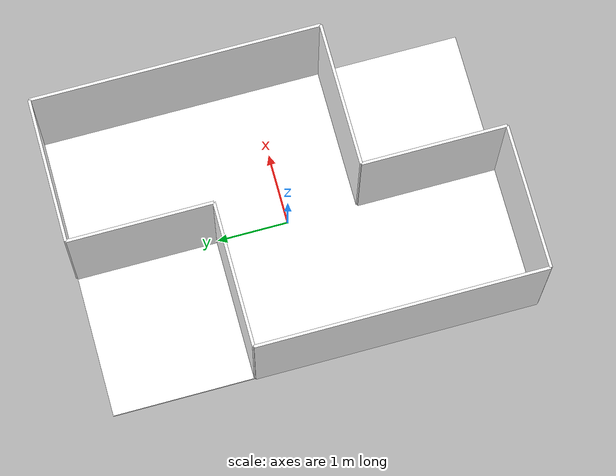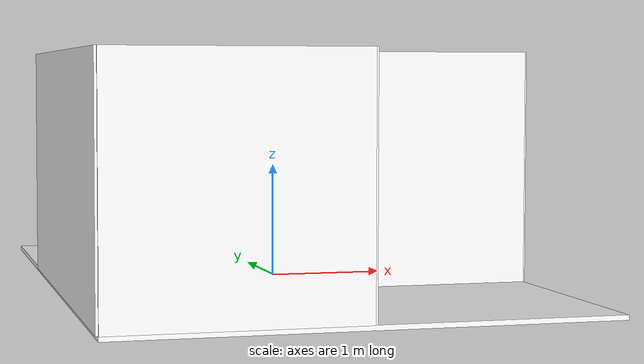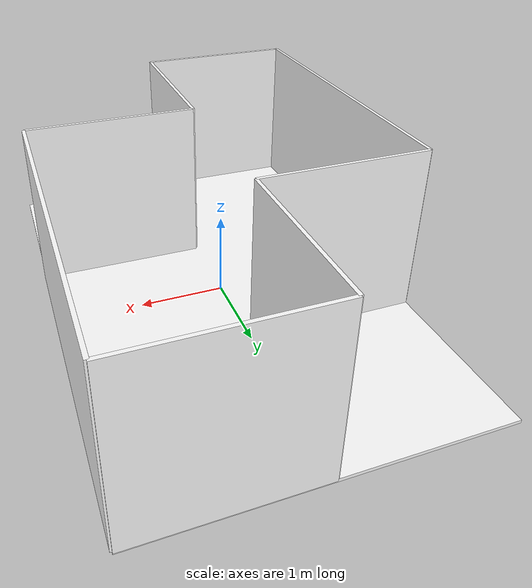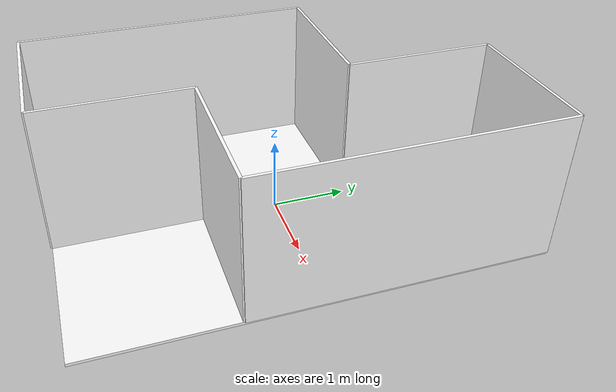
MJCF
<mujoco>
    <compiler angle="radian" autolimits="true"/>

    <worldbody>
        <body name="floor" pos="0 0 -0.02" quat="0.707107 0 0 0.707107">
            <geom name="floor_geom" size="3 2 0.02" type="box" rgba="1 1 1 1" />
        </body>
        <body name="wall_horizon_1" pos="-2 -1 1" quat="0.5 -0.5 -0.5 0.5">
            <geom name="wall_horizon_1_geom" size="2 1 0.02" type="box" rgba="1 1 1 1" />
        </body>
        <body name="wall_horizon_2" pos="0 -2 1" quat="0.5 -0.5 -0.5 0.5">
            <geom name="wall_horizon_2_geom" size="1 1 0.02" type="box" rgba="1 1 1 1" />
        </body>
        <body name="wall_horizon_3" pos="0 2 1" quat="0.5 -0.5 -0.5 0.5">
            <geom name="wall_horizon_3_geom" size="1 1 0.02" type="box" rgba="1 1 1 1" />
        </body>
        <body name="wall_horizon_4" pos="2 1 1" quat="0.5 -0.5 -0.5 0.5">
            <geom name="wall_horizon_4_geom" size="2 1 0.02" type="box" rgba="1 1 1 1" />
        </body>

        <body name="wall_vertical_1" pos="-1 -3 1" quat="0 0 0.707107 -0.707107">
            <geom name="wall_vertical_1_geom" size="1 1 0.02" type="box" rgba="1 1 1 1" />
        </body>
        <body name="wall_vertical_2" pos="-1 1 1" quat="0 0 0.707107 -0.707107">
            <geom name="wall_vertical_2_geom" size="1 1 0.02" type="box" rgba="1 1 1 1" />
        </body>
        <body name="wall_vertical_3" pos="1 -1 1" quat="0 0 0.707107 -0.707107">
            <geom name="wall_vertical_3_geom" size="1 1 0.02" type="box" rgba="1 1 1 1" />
        </body>
        <body name="wall_vertical_4" pos="1 3 1" quat="0 0 0.707107 -0.707107">
            <geom name="wall_vertical_4_geom" size="1 1 0.02" type="box" rgba="1 1 1 1" />
        </body>
    </worldbody>
</mujoco>
